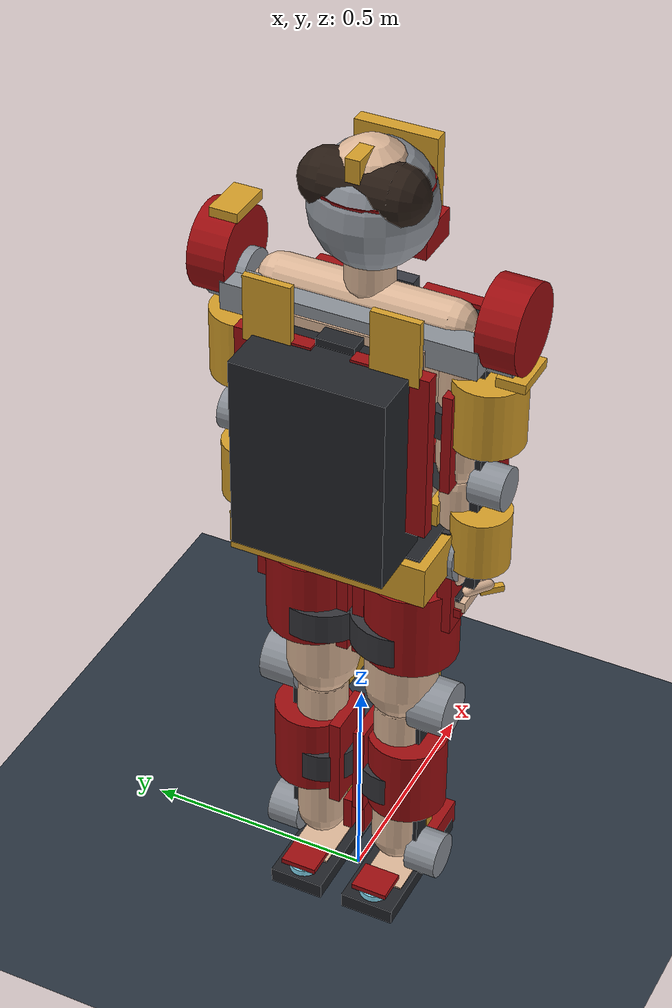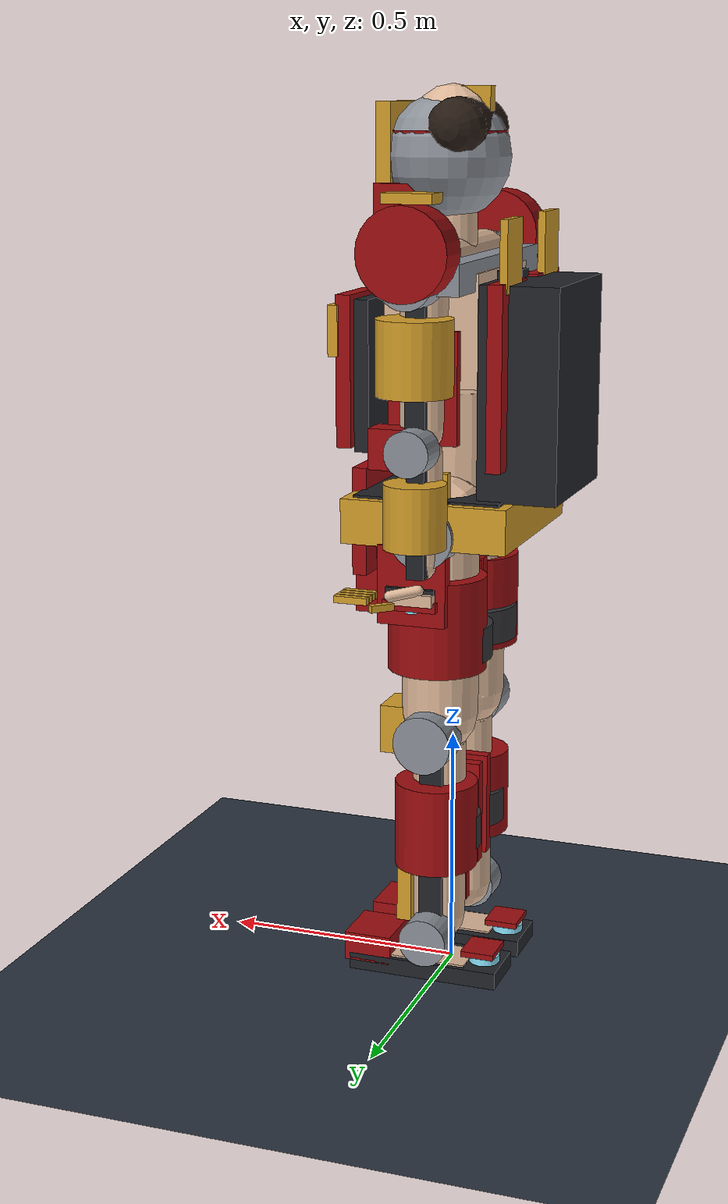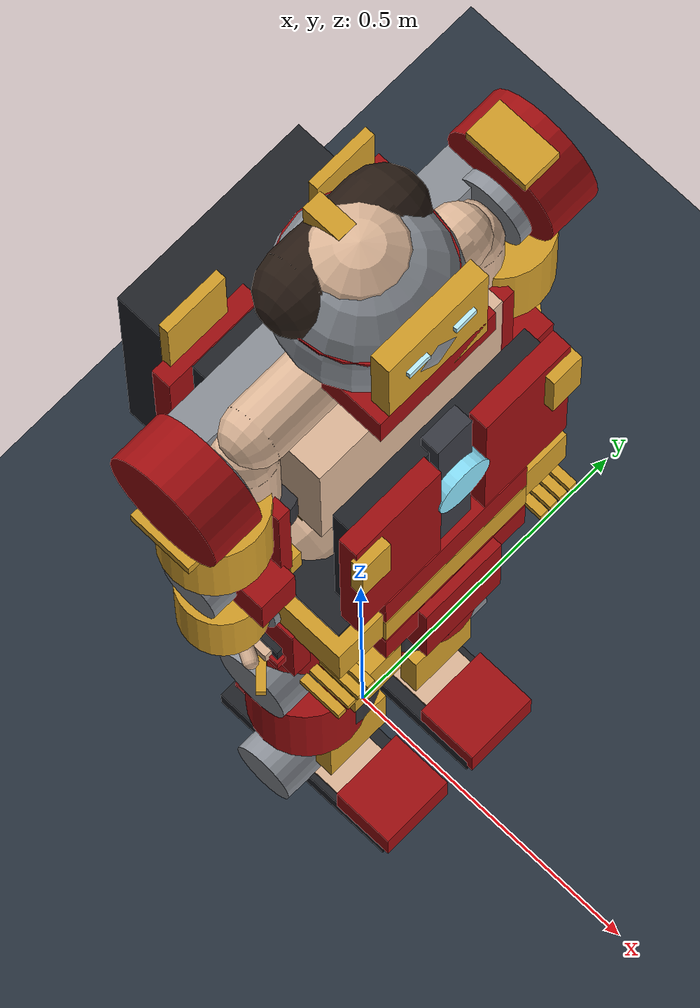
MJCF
<mujoco model="iron_man_mark_suit">
  <compiler angle="radian" />

  <worldbody>
    <light pos="1.5 -2 3" dir="-0.4 0.5 -0.8" diffuse="0.9 0.9 0.9" castshadow="true" /><geom name="floor" type="plane" size="20 20 0.1" material="grid" contype="1" conaffinity="1" /><body name="pelvis_frame" pos="0 0 0.0050"><freejoint name="root" /><geom size="0.15 0.19 0.05" pos="0 0 0.98425" type="box" rgba="0.13 0.14 0.16 1" />
    <geom size="0.17 0.21 0.045" pos="0 0 0.98425" type="box" rgba="0.83 0.62 0.16 1" />
    <body name="spine_frame" pos="0 0 0.96425">
      <inertial pos="-0.075026 0 0.367067" quat="0.698411 0.110554 0.110554 0.698411" mass="19.2" diaginertia="1.03327 0.973365 0.411216" />
      <joint name="trunk_flex" range="-0.35 0.5" actuatorfrcrange="-120 120" damping="0.1" axis="0 1 0" />
      <geom size="0.025 0.04 0.252" pos="-0.11 0 0.252" type="box" rgba="0.13 0.14 0.16 1" />
      <geom size="0.08 0.16 0.21" pos="-0.175 0 0.2772" type="box" rgba="0.13 0.14 0.16 1" />
      <geom size="0.015 0.17 0.15" pos="0.14 0 0.3024" type="box" rgba="0.13 0.14 0.16 1" />
      <geom size="0.03 0.265 0.03" pos="-0.06 0 0.504" type="box" rgba="0.55 0.57 0.6 1" />
      <geom size="0.125" pos="0.02 0 0.72075" rgba="0.55 0.57 0.6 1" />
      <geom size="0.115 0.03" pos="0.02 0 0.74075" type="cylinder" rgba="0.62 0.05 0.06 1" />
      <geom size="0.05 0.1 0.03" pos="0.09 0 0.64075" type="box" rgba="0.62 0.05 0.06 1" />
      <geom size="0.03 0.015 0.025" pos="-0.04 0 0.83075" type="box" rgba="0.83 0.62 0.16 1" />
      <geom size="0.015 0.03 0.17" pos="0.155 0 0.31248" type="box" rgba="0.22 0.23 0.26 1" />
      <geom size="0.045 0.0125" pos="0.175 0 0.33248" quat="0.707107 0 0.707107 0" type="cylinder" rgba="0.55 0.9 1 1" />
      <geom size="0.07 0.01 0.11" pos="0 0.2 0.29248" type="box" rgba="0.62 0.05 0.06 1" />
      <geom size="0.07 0.01 0.11" pos="0 -0.2 0.29248" type="box" rgba="0.62 0.05 0.06 1" />
      <body name="left_shoulder_module" pos="0 0.235 0.504">
        <inertial pos="0 0.04 0" quat="0.5 0.5 -0.5 0.5" mass="1.6" diaginertia="0.00242 0.002063 0.002063" />
        <joint name="left_shoulder_abduction" range="-0.3 2.6" actuatorfrcrange="-60 60" damping="0.1" axis="1 0 0" />
        <geom size="0.055 0.04" pos="0 0.04 0" quat="0.707107 0.707107 0 0" type="cylinder" rgba="0.55 0.57 0.6 1" />
        <body name="left_upper_arm_strut">
          <inertial pos="0 0.0125455 -0.22637" quat="0.997567 0.0697182 0 0" mass="2.75" diaginertia="0.0324653 0.031118 0.00463563" />
          <joint name="left_shoulder_flexion" range="-1 3" actuatorfrcrange="-60 60" damping="0.1" axis="0 1 0" />
          <geom size="0.02 0.0175 0.16275" pos="0 0 -0.16275" type="box" rgba="0.13 0.14 0.16 1" />
          <geom size="0.06 0.03" pos="0 -0.05 -0.179025" type="cylinder" rgba="0.2 0.2 0.22 1" />
          <geom size="0.045 0.035" pos="0 0.035 -0.3255" quat="0.707107 0.707107 0 0" type="cylinder" rgba="0.55 0.57 0.6 1" />
          <geom size="0.075 0.0732375" pos="0 0.02 -0.146475" type="cylinder" rgba="0.83 0.62 0.16 1" />
          <body name="left_forearm_strut" pos="0 0 -0.3255">
            <inertial pos="0 -0.00346154 -0.130207" quat="0.999865 -0.0164367 0 0" mass="1.3" diaginertia="0.00641313 0.00584157 0.00180325" />
            <joint name="left_elbow_flexion" range="-2.4 0.05" actuatorfrcrange="-40 40" damping="0.1" axis="0 1 0" />
            <geom size="0.0175 0.015 0.12775" pos="0 0 -0.12775" type="box" rgba="0.13 0.14 0.16 1" />
            <geom size="0.05 0.03" pos="0 -0.045 -0.140525" type="cylinder" rgba="0.2 0.2 0.22 1" />
            <geom size="0.062 0.063875" pos="0 0.015 -0.12775" type="cylinder" rgba="0.83 0.62 0.16 1" />
            <body name="left_hand" pos="0 0 -0.2555">
              <inertial pos="0.02 -0.045 -0.0511176" quat="0 0.707107 0 0.707107" mass="0.68" diaginertia="0.00085136 0.000692845 0.000425345" />
              <joint name="left_wrist_flexion" range="-0.8 0.8" actuatorfrcrange="-15 15" damping="0.1" axis="1 0 0" />
              <geom size="0.05 0.035 0.015" pos="0.02 -0.045 -0.04" type="box" rgba="0.13 0.14 0.16 1" />
              <geom size="0.055 0.04 0.01" pos="0.02 -0.045 -0.06" type="box" rgba="0.62 0.05 0.06 1" />
              <geom size="0.028 0.006" pos="0.02 -0.045 -0.072" type="cylinder" rgba="0.55 0.9 1 1" />
              <body name="left_finger_1" pos="0.11 -0.072 -0.06">
                <inertial pos="0.035 0 0" quat="0.5 0.5 0.5 0.5" mass="0.03" diaginertia="1.274e-05 1.274e-05 9.8e-07" />
                <joint name="left_finger_1_hinge" range="0 1.3" actuatorfrcrange="-1 1" damping="0.1" axis="0 1 0" />
                <geom size="0.035 0.007 0.007" pos="0.035 0 0" type="box" rgba="0.83 0.62 0.16 1" />
              </body>
              <body name="left_finger_2" pos="0.11 -0.054 -0.06">
                <inertial pos="0.035 0 0" quat="0.5 0.5 0.5 0.5" mass="0.03" diaginertia="1.274e-05 1.274e-05 9.8e-07" />
                <joint name="left_finger_2_hinge" range="0 1.3" actuatorfrcrange="-1 1" damping="0.1" axis="0 1 0" />
                <geom size="0.035 0.007 0.007" pos="0.035 0 0" type="box" rgba="0.83 0.62 0.16 1" />
              </body>
              <body name="left_finger_3" pos="0.11 -0.036 -0.06">
                <inertial pos="0.035 0 0" quat="0.5 0.5 0.5 0.5" mass="0.03" diaginertia="1.274e-05 1.274e-05 9.8e-07" />
                <joint name="left_finger_3_hinge" range="0 1.3" actuatorfrcrange="-1 1" damping="0.1" axis="0 1 0" />
                <geom size="0.035 0.007 0.007" pos="0.035 0 0" type="box" rgba="0.83 0.62 0.16 1" />
              </body>
              <body name="left_finger_4" pos="0.11 -0.018 -0.06">
                <inertial pos="0.035 0 0" quat="0.5 0.5 0.5 0.5" mass="0.03" diaginertia="1.274e-05 1.274e-05 9.8e-07" />
                <joint name="left_finger_4_hinge" range="0 1.3" actuatorfrcrange="-1 1" damping="0.1" axis="0 1 0" />
                <geom size="0.035 0.007 0.007" pos="0.035 0 0" type="box" rgba="0.83 0.62 0.16 1" />
              </body>
              <body name="left_thumb" pos="0.05 0 -0.06" quat="0.921061 0 0 0.389418">
                <inertial pos="0.025 0 0" quat="0.5 0.5 0.5 0.5" mass="0.03" diaginertia="6.74e-06 6.74e-06 9.8e-07" />
                <joint name="left_thumb_hinge" range="-0.9 0" actuatorfrcrange="-1 1" damping="0.1" />
                <geom size="0.025 0.007 0.007" pos="0.025 0 0" type="box" rgba="0.83 0.62 0.16 1" />
              </body>
            </body>
            <body name="left_gauntlet_hatch" pos="0 0.015 -0.09775">
              <inertial pos="0.025 0 0" quat="0 0.707107 0 0.707107" mass="0.06" diaginertia="1.7e-05 1.3e-05 5e-06" />
              <joint name="left_gauntlet_hatch_hinge" range="-1.2 0" actuatorfrcrange="-1.5 1.5" damping="0.1" axis="0 1 0" />
              <geom size="0.025 0.015 0.005" pos="0.025 0 0" type="box" rgba="0.62 0.05 0.06 1" />
            </body>
            <body name="left_gauntlet_inner" pos="0.045 -0.06 -0.12775">
              <inertial pos="-0.04 -0.01 0" quat="0.707107 0 0 0.707107" mass="0.3" diaginertia="0.000696182 0.000503682 0.0002125" />
              <joint name="left_gauntlet_inner_hinge" range="-1.5 0" actuatorfrcrange="-3 3" damping="0.1" />
              <geom size="0.045 0.01 0.0702625" pos="-0.04 -0.01 0" type="box" rgba="0.83 0.62 0.16 1" />
            </body>
          </body>
          <body name="left_elbow_cap" pos="0.05 0 -0.3255">
            <inertial pos="0 0 0" quat="0.707107 0 0 0.707107" mass="0.25" diaginertia="0.000266667 0.000208333 0.000208333" />
            <joint name="left_elbow_cap_hinge" range="-0.5 0" actuatorfrcrange="-2 2" damping="0.1" axis="0 1 0" />
            <geom size="0.04 0.03 0.04" type="box" rgba="0.62 0.05 0.06 1" />
          </body>
          <body name="left_bicep_inner" pos="0.055 -0.075 -0.146475">
            <inertial pos="-0.045 -0.01 0" quat="0.707107 0 0 0.707107" mass="0.35" diaginertia="0.001064 0.000784221 0.000303333" />
            <joint name="left_bicep_inner_hinge" range="-1.5 0" actuatorfrcrange="-3 3" damping="0.1" />
            <geom size="0.05 0.01 0.081375" pos="-0.045 -0.01 0" type="box" rgba="0.83 0.62 0.16 1" />
          </body>
        </body>
        <body name="left_pauldron" pos="0 0.06 0.05" quat="0.707107 0.707107 0 0">
          <inertial pos="0 0.0125 0.0025" quat="0.996788 -0.0800907 0 0" mass="0.8" diaginertia="0.00530533 0.00453864 0.00342836" />
          <joint name="left_pauldron_hinge" range="0 0.7" actuatorfrcrange="-3 3" damping="0.1" axis="1 0 0" />
          <geom size="0.09 0.04" type="cylinder" rgba="0.62 0.05 0.06 1" />
          <geom size="0.05 0.01 0.03" pos="0 0.1 0.02" type="box" rgba="0.83 0.62 0.16 1" />
        </body>
      </body>
      <body name="right_shoulder_module" pos="0 -0.235 0.504">
        <inertial pos="0 -0.04 0" quat="0.5 0.5 -0.5 0.5" mass="1.6" diaginertia="0.00242 0.002063 0.002063" />
        <joint name="right_shoulder_abduction" range="-0.3 2.6" actuatorfrcrange="-60 60" damping="0.1" axis="1 0 0" />
        <geom size="0.055 0.04" pos="0 -0.04 0" quat="0.707107 0.707107 0 0" type="cylinder" rgba="0.55 0.57 0.6 1" />
        <body name="right_upper_arm_strut">
          <inertial pos="0 -0.0125455 -0.22637" quat="0.997567 -0.0697182 0 0" mass="2.75" diaginertia="0.0324653 0.031118 0.00463563" />
          <joint name="right_shoulder_flexion" range="-1 3" actuatorfrcrange="-60 60" damping="0.1" axis="0 1 0" />
          <geom size="0.02 0.0175 0.16275" pos="0 0 -0.16275" type="box" rgba="0.13 0.14 0.16 1" />
          <geom size="0.06 0.03" pos="0 0.05 -0.179025" type="cylinder" rgba="0.2 0.2 0.22 1" />
          <geom size="0.045 0.035" pos="0 -0.035 -0.3255" quat="0.707107 0.707107 0 0" type="cylinder" rgba="0.55 0.57 0.6 1" />
          <geom size="0.075 0.0732375" pos="0 -0.02 -0.146475" type="cylinder" rgba="0.83 0.62 0.16 1" />
          <body name="right_forearm_strut" pos="0 0 -0.3255">
            <inertial pos="0 0.00346154 -0.130207" quat="0.999865 0.0164367 0 0" mass="1.3" diaginertia="0.00641313 0.00584157 0.00180325" />
            <joint name="right_elbow_flexion" range="-2.4 0.05" actuatorfrcrange="-40 40" damping="0.1" axis="0 1 0" />
            <geom size="0.0175 0.015 0.12775" pos="0 0 -0.12775" type="box" rgba="0.13 0.14 0.16 1" />
            <geom size="0.05 0.03" pos="0 0.045 -0.140525" type="cylinder" rgba="0.2 0.2 0.22 1" />
            <geom size="0.062 0.063875" pos="0 -0.015 -0.12775" type="cylinder" rgba="0.83 0.62 0.16 1" />
            <body name="right_hand" pos="0 0 -0.2555">
              <inertial pos="0.02 0.045 -0.0511176" quat="0 0.707107 0 0.707107" mass="0.68" diaginertia="0.00085136 0.000692845 0.000425345" />
              <joint name="right_wrist_flexion" range="-0.8 0.8" actuatorfrcrange="-15 15" damping="0.1" axis="1 0 0" />
              <geom size="0.05 0.035 0.015" pos="0.02 0.045 -0.04" type="box" rgba="0.13 0.14 0.16 1" />
              <geom size="0.055 0.04 0.01" pos="0.02 0.045 -0.06" type="box" rgba="0.62 0.05 0.06 1" />
              <geom size="0.028 0.006" pos="0.02 0.045 -0.072" type="cylinder" rgba="0.55 0.9 1 1" />
              <body name="right_finger_1" pos="0.11 0.018 -0.06">
                <inertial pos="0.035 0 0" quat="0.5 0.5 0.5 0.5" mass="0.03" diaginertia="1.274e-05 1.274e-05 9.8e-07" />
                <joint name="right_finger_1_hinge" range="0 1.3" actuatorfrcrange="-1 1" damping="0.1" axis="0 1 0" />
                <geom size="0.035 0.007 0.007" pos="0.035 0 0" type="box" rgba="0.83 0.62 0.16 1" />
              </body>
              <body name="right_finger_2" pos="0.11 0.036 -0.06">
                <inertial pos="0.035 0 0" quat="0.5 0.5 0.5 0.5" mass="0.03" diaginertia="1.274e-05 1.274e-05 9.8e-07" />
                <joint name="right_finger_2_hinge" range="0 1.3" actuatorfrcrange="-1 1" damping="0.1" axis="0 1 0" />
                <geom size="0.035 0.007 0.007" pos="0.035 0 0" type="box" rgba="0.83 0.62 0.16 1" />
              </body>
              <body name="right_finger_3" pos="0.11 0.054 -0.06">
                <inertial pos="0.035 0 0" quat="0.5 0.5 0.5 0.5" mass="0.03" diaginertia="1.274e-05 1.274e-05 9.8e-07" />
                <joint name="right_finger_3_hinge" range="0 1.3" actuatorfrcrange="-1 1" damping="0.1" axis="0 1 0" />
                <geom size="0.035 0.007 0.007" pos="0.035 0 0" type="box" rgba="0.83 0.62 0.16 1" />
              </body>
              <body name="right_finger_4" pos="0.11 0.072 -0.06">
                <inertial pos="0.035 0 0" quat="0.5 0.5 0.5 0.5" mass="0.03" diaginertia="1.274e-05 1.274e-05 9.8e-07" />
                <joint name="right_finger_4_hinge" range="0 1.3" actuatorfrcrange="-1 1" damping="0.1" axis="0 1 0" />
                <geom size="0.035 0.007 0.007" pos="0.035 0 0" type="box" rgba="0.83 0.62 0.16 1" />
              </body>
              <body name="right_thumb" pos="0.05 0 -0.06" quat="0.921061 0 0 -0.389418">
                <inertial pos="0.025 0 0" quat="0.5 0.5 0.5 0.5" mass="0.03" diaginertia="6.74e-06 6.74e-06 9.8e-07" />
                <joint name="right_thumb_hinge" range="0 0.9" actuatorfrcrange="-1 1" damping="0.1" />
                <geom size="0.025 0.007 0.007" pos="0.025 0 0" type="box" rgba="0.83 0.62 0.16 1" />
              </body>
            </body>
            <body name="right_gauntlet_hatch" pos="0 -0.015 -0.09775">
              <inertial pos="0.025 0 0" quat="0 0.707107 0 0.707107" mass="0.06" diaginertia="1.7e-05 1.3e-05 5e-06" />
              <joint name="right_gauntlet_hatch_hinge" range="-1.2 0" actuatorfrcrange="-1.5 1.5" damping="0.1" axis="0 1 0" />
              <geom size="0.025 0.015 0.005" pos="0.025 0 0" type="box" rgba="0.62 0.05 0.06 1" />
            </body>
            <body name="right_gauntlet_inner" pos="0.045 0.06 -0.12775">
              <inertial pos="-0.04 0.01 0" quat="0.707107 0 0 0.707107" mass="0.3" diaginertia="0.000696182 0.000503682 0.0002125" />
              <joint name="right_gauntlet_inner_hinge" range="0 1.5" actuatorfrcrange="-3 3" damping="0.1" />
              <geom size="0.045 0.01 0.0702625" pos="-0.04 0.01 0" type="box" rgba="0.83 0.62 0.16 1" />
            </body>
          </body>
          <body name="right_elbow_cap" pos="0.05 0 -0.3255">
            <inertial pos="0 0 0" quat="0.707107 0 0 0.707107" mass="0.25" diaginertia="0.000266667 0.000208333 0.000208333" />
            <joint name="right_elbow_cap_hinge" range="-0.5 0" actuatorfrcrange="-2 2" damping="0.1" axis="0 1 0" />
            <geom size="0.04 0.03 0.04" type="box" rgba="0.62 0.05 0.06 1" />
          </body>
          <body name="right_bicep_inner" pos="0.055 0.075 -0.146475">
            <inertial pos="-0.045 0.01 0" quat="0.707107 0 0 0.707107" mass="0.35" diaginertia="0.001064 0.000784221 0.000303333" />
            <joint name="right_bicep_inner_hinge" range="0 1.5" actuatorfrcrange="-3 3" damping="0.1" />
            <geom size="0.05 0.01 0.081375" pos="-0.045 0.01 0" type="box" rgba="0.83 0.62 0.16 1" />
          </body>
        </body>
        <body name="right_pauldron" pos="0 -0.06 0.05" quat="0.707107 0.707107 0 0">
          <inertial pos="0 -0.0125 0.0025" quat="0.996788 0.0800907 0 0" mass="0.8" diaginertia="0.00530533 0.00453864 0.00342836" />
          <joint name="right_pauldron_hinge" range="-0.7 0" actuatorfrcrange="-3 3" damping="0.1" axis="1 0 0" />
          <geom size="0.09 0.04" type="cylinder" rgba="0.62 0.05 0.06 1" />
          <geom size="0.05 0.01 0.03" pos="0 -0.1 0.02" type="box" rgba="0.83 0.62 0.16 1" />
        </body>
      </body>
      <body name="faceplate" pos="0.105 0 0.83075">
        <inertial pos="0.0213559 0 -0.0972881" quat="0.99996 0 0.00899181 0" mass="0.59" diaginertia="0.00310776 0.00177118 0.00144858" />
        <joint name="faceplate_hinge" range="-1.4 0" actuatorfrcrange="-3 3" damping="0.1" axis="0 1 0" />
        <geom size="0.015 0.085 0.095" pos="0.02 0 -0.1" type="box" rgba="0.83 0.62 0.16 1" />
        <geom size="0.003 0.0175 0.006" pos="0.04 0.04 -0.06" type="box" rgba="0.75 0.95 1 1" />
        <geom size="0.003 0.0175 0.006" pos="0.04 -0.04 -0.06" type="box" rgba="0.75 0.95 1 1" />
      </body>
      <body name="left_chest_plate" pos="0.16 0.03 0.31248">
        <inertial pos="0.0124 0.0916 0.0096" quat="0.998616 -0.0432787 0.0110083 -0.0277873" mass="1.25" diaginertia="0.0117257 0.00940247 0.00257813" />
        <joint name="left_chest_plate_hinge" range="0 1.1" actuatorfrcrange="-6 6" damping="0.1" />
        <geom size="0.015 0.075 0.15" pos="0.01 0.085 0" type="box" rgba="0.62 0.05 0.06 1" />
        <geom size="0.01 0.025 0.05" pos="0.03 0.14 0.08" type="box" rgba="0.83 0.62 0.16 1" />
      </body>
      <body name="right_chest_plate" pos="0.16 -0.03 0.31248">
        <inertial pos="0.0124 -0.0916 0.0096" quat="0.998616 0.0432787 0.0110083 0.0277873" mass="1.25" diaginertia="0.0117257 0.00940247 0.00257813" />
        <joint name="right_chest_plate_hinge" range="-1.1 0" actuatorfrcrange="-6 6" damping="0.1" />
        <geom size="0.015 0.075 0.15" pos="0.01 -0.085 0" type="box" rgba="0.62 0.05 0.06 1" />
        <geom size="0.01 0.025 0.05" pos="0.03 -0.14 0.08" type="box" rgba="0.83 0.62 0.16 1" />
      </body>
      <body name="ab_plate_1" pos="0.155 0 0.11248">
        <inertial pos="0.005 0 -0.035" quat="0.707107 0.707107 0 0" mass="0.35" diaginertia="0.002115 0.001998 0.000169167" />
        <joint name="ab_plate_1_hinge" range="0 0.35" actuatorfrcrange="-2 2" damping="0.1" axis="0 1 0" />
        <geom size="0.015 0.13 0.035" pos="0.005 0 -0.035" type="box" rgba="0.62 0.05 0.06 1" />
        <body name="ab_plate_2" pos="0 0 -0.075">
          <inertial pos="0.005 0 -0.035" quat="0.707107 0.707107 0 0" mass="0.35" diaginertia="0.002115 0.001998 0.000169167" />
          <joint name="ab_plate_2_hinge" range="0 0.35" actuatorfrcrange="-2 2" damping="0.1" axis="0 1 0" />
          <geom size="0.015 0.13 0.035" pos="0.005 0 -0.035" type="box" rgba="0.83 0.62 0.16 1" />
          <body name="ab_plate_3" pos="0 0 -0.075">
            <inertial pos="0.005 0 -0.035" quat="0.707107 0.707107 0 0" mass="0.35" diaginertia="0.002115 0.001998 0.000169167" />
            <joint name="ab_plate_3_hinge" range="0 0.35" actuatorfrcrange="-2 2" damping="0.1" axis="0 1 0" />
            <geom size="0.015 0.13 0.035" pos="0.005 0 -0.035" type="box" rgba="0.62 0.05 0.06 1" />
          </body>
        </body>
      </body>
      <body name="left_back_door" pos="-0.13 0.03 0.31248">
        <inertial pos="-0.01 0.09 0" mass="1" diaginertia="0.012933 0.010875 0.002208" />
        <joint name="left_back_door_hinge" range="-1.2 0" actuatorfrcrange="-6 6" damping="0.1" />
        <geom size="0.015 0.08 0.18" pos="-0.01 0.09 0" type="box" rgba="0.62 0.05 0.06 1" />
        <body name="left_air_brake" pos="-0.02 0.1 0.16">
          <inertial pos="0 0 0.07" mass="0.2" diaginertia="0.000493333 0.000330417 0.000170417" />
          <joint name="left_air_brake_hinge" range="-1 0" actuatorfrcrange="-2 2" damping="0.1" axis="0 1 0" />
          <geom size="0.0075 0.05 0.07" pos="0 0 0.07" type="box" rgba="0.83 0.62 0.16 1" />
        </body>
      </body>
      <body name="right_back_door" pos="-0.13 -0.03 0.31248">
        <inertial pos="-0.01 -0.09 0" mass="1" diaginertia="0.012933 0.010875 0.002208" />
        <joint name="right_back_door_hinge" range="0 1.2" actuatorfrcrange="-6 6" damping="0.1" />
        <geom size="0.015 0.08 0.18" pos="-0.01 -0.09 0" type="box" rgba="0.62 0.05 0.06 1" />
        <body name="right_air_brake" pos="-0.02 -0.1 0.16">
          <inertial pos="0 0 0.07" mass="0.2" diaginertia="0.000493333 0.000330417 0.000170417" />
          <joint name="right_air_brake_hinge" range="-1 0" actuatorfrcrange="-2 2" damping="0.1" axis="0 1 0" />
          <geom size="0.0075 0.05 0.07" pos="0 0 0.07" type="box" rgba="0.83 0.62 0.16 1" />
        </body>
      </body>
    </body>
    <body name="left_hip_module" pos="0 0.13 0.96425">
      <inertial pos="0 0.045 0" quat="0.5 0.5 -0.5 0.5" mass="2.4" diaginertia="0.00507 0.004155 0.004155" />
      <joint name="left_hip_abduction" range="-0.3 0.5" actuatorfrcrange="-120 120" damping="0.1" axis="1 0 0" />
      <geom size="0.065 0.045" pos="0 0.045 0" quat="0.707107 0.707107 0 0" type="cylinder" rgba="0.55 0.57 0.6 1" />
      <body name="left_thigh_strut">
        <inertial pos="0 0.0100505 -0.307704" quat="0.996431 0.084413 0 0" mass="4.95" diaginertia="0.100164 0.098458 0.012985" />
        <joint name="left_hip_flexion" range="-0.5 2" actuatorfrcrange="-150 150" damping="0.1" axis="0 1 0" />
        <geom size="0.0275 0.02 0.214375" pos="0 0 -0.214375" type="box" rgba="0.13 0.14 0.16 1" />
        <geom size="0.105 0.035" pos="0 -0.045 -0.235813" type="cylinder" rgba="0.2 0.2 0.22 1" />
        <geom size="0.06 0.04" pos="0 0.04 -0.42875" quat="0.707107 0.707107 0 0" type="cylinder" rgba="0.55 0.57 0.6 1" />
        <geom size="0.1 0.0964685" pos="0 -0.02 -0.192937" type="cylinder" rgba="0.62 0.05 0.06 1" />
        <body name="left_shank_strut" pos="0 0 -0.42875">
          <inertial pos="0 0.00554054 -0.298441" quat="0.997001 0.0773844 0 0" mass="3.7" diaginertia="0.073329 0.0721777 0.00726378" />
          <joint name="left_knee_flexion" range="-2.2 0.05" actuatorfrcrange="-150 150" damping="0.1" axis="0 1 0" />
          <geom size="0.025 0.0175 0.21525" pos="0 0 -0.21525" type="box" rgba="0.13 0.14 0.16 1" />
          <geom size="0.085 0.035" pos="0 -0.045 -0.21525" type="cylinder" rgba="0.2 0.2 0.22 1" />
          <geom size="0.05 0.035" pos="0 0.035 -0.4305" quat="0.707107 0.707107 0 0" type="cylinder" rgba="0.55 0.57 0.6 1" />
          <geom size="0.085 0.090405" pos="0 -0.02 -0.193725" type="cylinder" rgba="0.62 0.05 0.06 1" />
          <body name="left_boot" pos="0 0 -0.4305">
            <inertial pos="0.0333333 -0.045 -0.0797222" quat="0 0.689755 0 0.724042" mass="1.8" diaginertia="0.0203634 0.0188591 0.00253249" />
            <joint name="left_ankle_flexion" range="-0.6 0.6" actuatorfrcrange="-100 100" damping="0.1" axis="0 1 0" />
            <geom size="0.16 0.06 0.0175" pos="0.02 -0.045 -0.0875" type="box" rgba="0.13 0.14 0.16 1" />
            <geom size="0.05 0.06 0.03" pos="0.14 -0.045 -0.055" type="box" rgba="0.62 0.05 0.06 1" />
            <geom size="0.032 0.015" pos="-0.1 -0.045 -0.07" type="cylinder" rgba="0.55 0.9 1 1" />
            <body name="left_boot_shin_guard" pos="0.06 -0.045 0.02">
              <inertial pos="0 0 0.06" mass="0.3" diaginertia="0.0006625 0.0003825 0.000325" />
              <joint name="left_boot_shin_guard_hinge" range="0 0.7" actuatorfrcrange="-2 2" damping="0.1" axis="0 1 0" />
              <geom size="0.015 0.055 0.06" pos="0 0 0.06" type="box" rgba="0.83 0.62 0.16 1" />
            </body>
            <body name="left_thruster_cover" pos="-0.06 -0.045 -0.045">
              <inertial pos="-0.035 0 0" quat="0.5 0.5 -0.5 0.5" mass="0.08" diaginertia="7.53333e-05 4.36267e-05 3.36267e-05" />
              <joint name="left_thruster_cover_hinge" range="-1.3 0" actuatorfrcrange="-1.5 1.5" damping="0.1" axis="0 1 0" />
              <geom size="0.035 0.04 0.006" pos="-0.035 0 0" type="box" rgba="0.62 0.05 0.06 1" />
            </body>
            <body name="left_ankle_flap" pos="0 -0.115 0.02">
              <inertial pos="0 0 0.04" quat="0.707107 0 0 0.707107" mass="0.1" diaginertia="8.33333e-05 5.66667e-05 3.33333e-05" />
              <joint name="left_ankle_flap_hinge" range="0 0.8" actuatorfrcrange="-1.5 1.5" damping="0.1" axis="1 0 0" />
              <geom size="0.03 0.01 0.04" pos="0 0 0.04" type="box" rgba="0.62 0.05 0.06 1" />
            </body>
          </body>
          <body name="left_calf_shell" pos="-0.06 -0.09 -0.193725">
            <inertial pos="0.05 -0.012 0" quat="0.707107 0 0 0.707107" mass="0.45" diaginertia="0.002277 0.001761 0.000563438" />
            <joint name="left_calf_shell_hinge" range="0 1.4" actuatorfrcrange="-3 3" damping="0.1" />
            <geom size="0.06 0.0125 0.107625" pos="0.05 -0.012 0" type="box" rgba="0.62 0.05 0.06 1" />
          </body>
        </body>
        <body name="left_knee_cap" pos="0.07 -0.045 -0.42875">
          <inertial pos="0 0 0" mass="0.35" diaginertia="0.000527917 0.000527917 0.0004725" />
          <joint name="left_knee_cap_hinge" range="-0.6 0" actuatorfrcrange="-2 2" damping="0.1" axis="0 1 0" />
          <geom size="0.045 0.045 0.05" type="box" rgba="0.83 0.62 0.16 1" />
        </body>
        <body name="left_thigh_inner" pos="0.07 -0.1 -0.192937">
          <inertial pos="-0.06 -0.012 0" quat="0.707107 0 0 0.707107" mass="0.5" diaginertia="0.002732 0.001941 0.000842708" />
          <joint name="left_thigh_inner_hinge" range="-1.4 0" actuatorfrcrange="-3 3" damping="0.1" />
          <geom size="0.07 0.0125 0.107188" pos="-0.06 -0.012 0" type="box" rgba="0.62 0.05 0.06 1" />
        </body>
      </body>
    </body>
    <body name="right_hip_module" pos="0 -0.13 0.96425">
      <inertial pos="0 -0.045 0" quat="0.5 0.5 -0.5 0.5" mass="2.4" diaginertia="0.00507 0.004155 0.004155" />
      <joint name="right_hip_abduction" range="-0.3 0.5" actuatorfrcrange="-120 120" damping="0.1" axis="1 0 0" />
      <geom size="0.065 0.045" pos="0 -0.045 0" quat="0.707107 0.707107 0 0" type="cylinder" rgba="0.55 0.57 0.6 1" />
      <body name="right_thigh_strut">
        <inertial pos="0 -0.0100505 -0.307704" quat="0.996431 -0.084413 0 0" mass="4.95" diaginertia="0.100164 0.098458 0.012985" />
        <joint name="right_hip_flexion" range="-0.5 2" actuatorfrcrange="-150 150" damping="0.1" axis="0 1 0" />
        <geom size="0.0275 0.02 0.214375" pos="0 0 -0.214375" type="box" rgba="0.13 0.14 0.16 1" />
        <geom size="0.105 0.035" pos="0 0.045 -0.235813" type="cylinder" rgba="0.2 0.2 0.22 1" />
        <geom size="0.06 0.04" pos="0 -0.04 -0.42875" quat="0.707107 0.707107 0 0" type="cylinder" rgba="0.55 0.57 0.6 1" />
        <geom size="0.1 0.0964685" pos="0 0.02 -0.192937" type="cylinder" rgba="0.62 0.05 0.06 1" />
        <body name="right_shank_strut" pos="0 0 -0.42875">
          <inertial pos="0 -0.00554054 -0.298441" quat="0.997001 -0.0773844 0 0" mass="3.7" diaginertia="0.073329 0.0721777 0.00726378" />
          <joint name="right_knee_flexion" range="-2.2 0.05" actuatorfrcrange="-150 150" damping="0.1" axis="0 1 0" />
          <geom size="0.025 0.0175 0.21525" pos="0 0 -0.21525" type="box" rgba="0.13 0.14 0.16 1" />
          <geom size="0.085 0.035" pos="0 0.045 -0.21525" type="cylinder" rgba="0.2 0.2 0.22 1" />
          <geom size="0.05 0.035" pos="0 -0.035 -0.4305" quat="0.707107 0.707107 0 0" type="cylinder" rgba="0.55 0.57 0.6 1" />
          <geom size="0.085 0.090405" pos="0 0.02 -0.193725" type="cylinder" rgba="0.62 0.05 0.06 1" />
          <body name="right_boot" pos="0 0 -0.4305">
            <inertial pos="0.0333333 0.045 -0.0797222" quat="0 0.689755 0 0.724042" mass="1.8" diaginertia="0.0203634 0.0188591 0.00253249" />
            <joint name="right_ankle_flexion" range="-0.6 0.6" actuatorfrcrange="-100 100" damping="0.1" axis="0 1 0" />
            <geom size="0.16 0.06 0.0175" pos="0.02 0.045 -0.0875" type="box" rgba="0.13 0.14 0.16 1" />
            <geom size="0.05 0.06 0.03" pos="0.14 0.045 -0.055" type="box" rgba="0.62 0.05 0.06 1" />
            <geom size="0.032 0.015" pos="-0.1 0.045 -0.07" type="cylinder" rgba="0.55 0.9 1 1" />
            <body name="right_boot_shin_guard" pos="0.06 0.045 0.02">
              <inertial pos="0 0 0.06" mass="0.3" diaginertia="0.0006625 0.0003825 0.000325" />
              <joint name="right_boot_shin_guard_hinge" range="0 0.7" actuatorfrcrange="-2 2" damping="0.1" axis="0 1 0" />
              <geom size="0.015 0.055 0.06" pos="0 0 0.06" type="box" rgba="0.83 0.62 0.16 1" />
            </body>
            <body name="right_thruster_cover" pos="-0.06 0.045 -0.045">
              <inertial pos="-0.035 0 0" quat="0.5 0.5 -0.5 0.5" mass="0.08" diaginertia="7.53333e-05 4.36267e-05 3.36267e-05" />
              <joint name="right_thruster_cover_hinge" range="-1.3 0" actuatorfrcrange="-1.5 1.5" damping="0.1" axis="0 1 0" />
              <geom size="0.035 0.04 0.006" pos="-0.035 0 0" type="box" rgba="0.62 0.05 0.06 1" />
            </body>
            <body name="right_ankle_flap" pos="0 0.115 0.02">
              <inertial pos="0 0 0.04" quat="0.707107 0 0 0.707107" mass="0.1" diaginertia="8.33333e-05 5.66667e-05 3.33333e-05" />
              <joint name="right_ankle_flap_hinge" range="-0.8 0" actuatorfrcrange="-1.5 1.5" damping="0.1" axis="1 0 0" />
              <geom size="0.03 0.01 0.04" pos="0 0 0.04" type="box" rgba="0.62 0.05 0.06 1" />
            </body>
          </body>
          <body name="right_calf_shell" pos="-0.06 0.09 -0.193725">
            <inertial pos="0.05 0.012 0" quat="0.707107 0 0 0.707107" mass="0.45" diaginertia="0.002277 0.001761 0.000563438" />
            <joint name="right_calf_shell_hinge" range="-1.4 0" actuatorfrcrange="-3 3" damping="0.1" />
            <geom size="0.06 0.0125 0.107625" pos="0.05 0.012 0" type="box" rgba="0.62 0.05 0.06 1" />
          </body>
        </body>
        <body name="right_knee_cap" pos="0.07 0.045 -0.42875">
          <inertial pos="0 0 0" mass="0.35" diaginertia="0.000527917 0.000527917 0.0004725" />
          <joint name="right_knee_cap_hinge" range="-0.6 0" actuatorfrcrange="-2 2" damping="0.1" axis="0 1 0" />
          <geom size="0.045 0.045 0.05" type="box" rgba="0.83 0.62 0.16 1" />
        </body>
        <body name="right_thigh_inner" pos="0.07 0.1 -0.192937">
          <inertial pos="-0.06 0.012 0" quat="0.707107 0 0 0.707107" mass="0.5" diaginertia="0.002732 0.001941 0.000842708" />
          <joint name="right_thigh_inner_hinge" range="0 1.4" actuatorfrcrange="-3 3" damping="0.1" />
          <geom size="0.07 0.0125 0.107188" pos="-0.06 0.012 0" type="box" rgba="0.62 0.05 0.06 1" />
        </body>
      </body>
    </body>
    <body name="codpiece" pos="0.16 0 0.90425">
      <inertial pos="0 0 -0.06" mass="0.4" diaginertia="0.001507 0.000973333 0.000773333" />
      <joint name="codpiece_hinge" range="0 0.6" actuatorfrcrange="-2 2" damping="0.1" axis="0 1 0" />
      <geom size="0.03 0.07 0.08" pos="0 0 -0.06" type="box" rgba="0.62 0.05 0.06 1" />
    </body>
    <body name="left_hip_flap" pos="0.02 0.2 0.94425">
      <inertial pos="0 0 -0.08" quat="0.707107 0 0 0.707107" mass="0.4" diaginertia="0.001507 0.000883333 0.000683333" />
      <joint name="left_hip_flap_hinge" range="-0.6 0" actuatorfrcrange="-2 2" damping="0.1" axis="1 0 0" />
      <geom size="0.07 0.015 0.08" pos="0 0 -0.08" type="box" rgba="0.62 0.05 0.06 1" />
    </body>
    <body name="right_hip_flap" pos="0.02 -0.2 0.94425">
      <inertial pos="0 0 -0.08" quat="0.707107 0 0 0.707107" mass="0.4" diaginertia="0.001507 0.000883333 0.000683333" />
      <joint name="right_hip_flap_hinge" range="0 0.6" actuatorfrcrange="-2 2" damping="0.1" axis="1 0 0" />
      <geom size="0.07 0.015 0.08" pos="0 0 -0.08" type="box" rgba="0.62 0.05 0.06 1" />
    </body>
  <inertial pos="0 0 0.98425" mass="3" diaginertia="0.0386 0.025 0.0586" /></body><body name="w_pelvis" pos="0 0 0.9642"><freejoint name="wearer_root" /><geom type="capsule" fromto="0 -0.090 0.02 0 0.090 0.02" size="0.095" mass="10.650" rgba="0.87 0.72 0.60 1" contype="0" conaffinity="0" /><body name="w_torso" pos="0 0 0.06"><joint name="w_trunk" type="hinge" axis="0 1 0" range="-0.4 0.6" damping="2" /><geom type="capsule" fromto="0 0 0.02 0 0 0.2117" size="0.105" mass="10.650" rgba="0.87 0.72 0.60 1" contype="0" conaffinity="0" /><geom type="box" size="0.095 0.161 0.1109" pos="0 0 0.3427" mass="13.312" rgba="0.87 0.72 0.60 1" contype="0" conaffinity="0" /><geom type="capsule" fromto="0 -0.179 0.4687 0 0.179 0.4687" size="0.045" mass="2.663" rgba="0.87 0.72 0.60 1" contype="0" conaffinity="0" /><body name="w_head" pos="0.01 0 0.4987"><geom type="capsule" fromto="0 0 0 0 0 0.0910" size="0.05" mass="0.911" rgba="0.87 0.72 0.60 1" contype="0" conaffinity="0" /><geom type="capsule" fromto="0 0 0.1310 0 0 0.2210" size="0.085" mass="5.164" rgba="0.87 0.72 0.60 1" contype="0" conaffinity="0" /><geom type="sphere" size="0.012" pos="0.078 0.032 0.2010" rgba="0.16 0.11 0.08 1" contype="0" conaffinity="0" /><geom type="sphere" size="0.012" pos="0.078 -0.032 0.2010" rgba="0.16 0.11 0.08 1" contype="0" conaffinity="0" /><geom type="capsule" fromto="-0.03 -0.07 0.2210 -0.03 0.07 0.2210" size="0.06" mass="0.2" rgba="0.16 0.11 0.08 1" contype="0" conaffinity="0" /></body><body name="w_left_upper_arm" pos="0 0.199 0.4536"><joint name="w_left_shoulder" type="hinge" axis="0 1 0" range="-1.0 3.0" damping="1" /><geom type="capsule" fromto="0 0 -0.02 0 0 -0.2955" size="0.046" mass="2.100" rgba="0.87 0.72 0.60 1" contype="0" conaffinity="0" /><body name="w_left_forearm" pos="0 0 -0.3255"><joint name="w_left_elbow" type="hinge" axis="0 1 0" range="-2.4 0.05" damping="1" /><geom type="capsule" fromto="0 0 -0.02 0 0 -0.2355" size="0.037" mass="1.200" rgba="0.87 0.72 0.60 1" contype="0" conaffinity="0" /><body name="w_left_hand" pos="0 0 -0.2555"><geom type="box" size="0.045 0.038 0.012" pos="0.015 0 -0.05" mass="0.360" rgba="0.87 0.72 0.60 1" contype="0" conaffinity="0" /><geom type="capsule" fromto="0.0 0.030 -0.03 0.05 0.055 -0.04" size="0.011" mass="0.090" rgba="0.87 0.72 0.60 1" contype="0" conaffinity="0" /></body></body></body><body name="w_right_upper_arm" pos="0 -0.199 0.4536"><joint name="w_right_shoulder" type="hinge" axis="0 1 0" range="-1.0 3.0" damping="1" /><geom type="capsule" fromto="0 0 -0.02 0 0 -0.2955" size="0.046" mass="2.100" rgba="0.87 0.72 0.60 1" contype="0" conaffinity="0" /><body name="w_right_forearm" pos="0 0 -0.3255"><joint name="w_right_elbow" type="hinge" axis="0 1 0" range="-2.4 0.05" damping="1" /><geom type="capsule" fromto="0 0 -0.02 0 0 -0.2355" size="0.037" mass="1.200" rgba="0.87 0.72 0.60 1" contype="0" conaffinity="0" /><body name="w_right_hand" pos="0 0 -0.2555"><geom type="box" size="0.045 0.038 0.012" pos="0.015 0 -0.05" mass="0.360" rgba="0.87 0.72 0.60 1" contype="0" conaffinity="0" /><geom type="capsule" fromto="0.0 -0.030 -0.03 0.05 -0.055 -0.04" size="0.011" mass="0.090" rgba="0.87 0.72 0.60 1" contype="0" conaffinity="0" /></body></body></body></body><body name="w_left_thigh" pos="0 0.090 0"><joint name="w_left_hip" type="hinge" axis="0 1 0" range="-0.6 2.0" damping="1.5" /><geom type="capsule" fromto="0 0 -0.02 0 0 -0.3887" size="0.078" mass="7.500" rgba="0.87 0.72 0.60 1" contype="0" conaffinity="0" /><body name="w_left_shank" pos="0 0 -0.4287"><joint name="w_left_knee" type="hinge" axis="0 1 0" range="-2.2 0.05" damping="1.5" /><geom type="capsule" fromto="0 0 -0.02 0 0 -0.4005" size="0.055" mass="3.487" rgba="0.87 0.72 0.60 1" contype="0" conaffinity="0" /><body name="w_left_foot" pos="0 0 -0.4305"><joint name="w_left_ankle" type="hinge" axis="0 1 0" range="-0.6 0.6" damping="1" /><geom type="box" size="0.125 0.045 0.022" pos="0.055 0 -0.0830" mass="1.088" rgba="0.87 0.72 0.60 1" contype="0" conaffinity="0" /></body></body></body><body name="w_right_thigh" pos="0 -0.090 0"><joint name="w_right_hip" type="hinge" axis="0 1 0" range="-0.6 2.0" damping="1.5" /><geom type="capsule" fromto="0 0 -0.02 0 0 -0.3887" size="0.078" mass="7.500" rgba="0.87 0.72 0.60 1" contype="0" conaffinity="0" /><body name="w_right_shank" pos="0 0 -0.4287"><joint name="w_right_knee" type="hinge" axis="0 1 0" range="-2.2 0.05" damping="1.5" /><geom type="capsule" fromto="0 0 -0.02 0 0 -0.4005" size="0.055" mass="3.487" rgba="0.87 0.72 0.60 1" contype="0" conaffinity="0" /><body name="w_right_foot" pos="0 0 -0.4305"><joint name="w_right_ankle" type="hinge" axis="0 1 0" range="-0.6 0.6" damping="1" /><geom type="box" size="0.125 0.045 0.022" pos="0.055 0 -0.0830" mass="1.088" rgba="0.87 0.72 0.60 1" contype="0" conaffinity="0" /></body></body></body></body></worldbody>
<option timestep="0.002" gravity="0 0 -9.81" integrator="implicitfast" /><default><joint damping="0.6" armature="0.01" frictionloss="0.05" /><geom friction="1 0.005 0.0001" condim="3" solref="0.005 1" solimp="0.95 0.99 0.001" contype="1" conaffinity="0" /><position kp="2138.0" forcerange="-855 855" /></default><asset><texture type="skybox" builtin="gradient" rgb1="0.35 0.45 0.6" rgb2="0.05 0.06 0.08" width="256" height="256" /><texture name="grid" type="2d" builtin="checker" rgb1="0.2 0.25 0.3" rgb2="0.12 0.15 0.19" width="512" height="512" /><material name="grid" texture="grid" texrepeat="10 10" reflectance="0.15" /></asset><visual><headlight diffuse="0.7 0.7 0.7" ambient="0.35 0.35 0.35" /><global offwidth="1280" offheight="720" /></visual><actuator><position name="act_trunk_flex" joint="trunk_flex" ctrlrange="-0.35 0.5" ctrllimited="true" /><position name="act_left_shoulder_abduction" joint="left_shoulder_abduction" ctrlrange="-0.3 2.6" ctrllimited="true" /><position name="act_left_shoulder_flexion" joint="left_shoulder_flexion" ctrlrange="-1 3" ctrllimited="true" /><position name="act_left_elbow_flexion" joint="left_elbow_flexion" ctrlrange="-2.4 0.05" ctrllimited="true" /><position name="act_left_wrist_flexion" joint="left_wrist_flexion" ctrlrange="-0.8 0.8" ctrllimited="true" /><position name="act_left_finger_1_hinge" joint="left_finger_1_hinge" ctrlrange="0 1.3" ctrllimited="true" /><position name="act_left_finger_2_hinge" joint="left_finger_2_hinge" ctrlrange="0 1.3" ctrllimited="true" /><position name="act_left_finger_3_hinge" joint="left_finger_3_hinge" ctrlrange="0 1.3" ctrllimited="true" /><position name="act_left_finger_4_hinge" joint="left_finger_4_hinge" ctrlrange="0 1.3" ctrllimited="true" /><position name="act_left_thumb_hinge" joint="left_thumb_hinge" ctrlrange="-0.9 0" ctrllimited="true" /><position name="act_left_gauntlet_hatch_hinge" joint="left_gauntlet_hatch_hinge" ctrlrange="-1.2 0" ctrllimited="true" /><position name="act_left_gauntlet_inner_hinge" joint="left_gauntlet_inner_hinge" ctrlrange="-1.5 0" ctrllimited="true" /><position name="act_left_elbow_cap_hinge" joint="left_elbow_cap_hinge" ctrlrange="-0.5 0" ctrllimited="true" /><position name="act_left_bicep_inner_hinge" joint="left_bicep_inner_hinge" ctrlrange="-1.5 0" ctrllimited="true" /><position name="act_left_pauldron_hinge" joint="left_pauldron_hinge" ctrlrange="0 0.7" ctrllimited="true" /><position name="act_right_shoulder_abduction" joint="right_shoulder_abduction" ctrlrange="-0.3 2.6" ctrllimited="true" /><position name="act_right_shoulder_flexion" joint="right_shoulder_flexion" ctrlrange="-1 3" ctrllimited="true" /><position name="act_right_elbow_flexion" joint="right_elbow_flexion" ctrlrange="-2.4 0.05" ctrllimited="true" /><position name="act_right_wrist_flexion" joint="right_wrist_flexion" ctrlrange="-0.8 0.8" ctrllimited="true" /><position name="act_right_finger_1_hinge" joint="right_finger_1_hinge" ctrlrange="0 1.3" ctrllimited="true" /><position name="act_right_finger_2_hinge" joint="right_finger_2_hinge" ctrlrange="0 1.3" ctrllimited="true" /><position name="act_right_finger_3_hinge" joint="right_finger_3_hinge" ctrlrange="0 1.3" ctrllimited="true" /><position name="act_right_finger_4_hinge" joint="right_finger_4_hinge" ctrlrange="0 1.3" ctrllimited="true" /><position name="act_right_thumb_hinge" joint="right_thumb_hinge" ctrlrange="0 0.9" ctrllimited="true" /><position name="act_right_gauntlet_hatch_hinge" joint="right_gauntlet_hatch_hinge" ctrlrange="-1.2 0" ctrllimited="true" /><position name="act_right_gauntlet_inner_hinge" joint="right_gauntlet_inner_hinge" ctrlrange="0 1.5" ctrllimited="true" /><position name="act_right_elbow_cap_hinge" joint="right_elbow_cap_hinge" ctrlrange="-0.5 0" ctrllimited="true" /><position name="act_right_bicep_inner_hinge" joint="right_bicep_inner_hinge" ctrlrange="0 1.5" ctrllimited="true" /><position name="act_right_pauldron_hinge" joint="right_pauldron_hinge" ctrlrange="-0.7 0" ctrllimited="true" /><position name="act_faceplate_hinge" joint="faceplate_hinge" ctrlrange="-1.4 0" ctrllimited="true" /><position name="act_left_chest_plate_hinge" joint="left_chest_plate_hinge" ctrlrange="0 1.1" ctrllimited="true" /><position name="act_right_chest_plate_hinge" joint="right_chest_plate_hinge" ctrlrange="-1.1 0" ctrllimited="true" /><position name="act_ab_plate_1_hinge" joint="ab_plate_1_hinge" ctrlrange="0 0.35" ctrllimited="true" /><position name="act_ab_plate_2_hinge" joint="ab_plate_2_hinge" ctrlrange="0 0.35" ctrllimited="true" /><position name="act_ab_plate_3_hinge" joint="ab_plate_3_hinge" ctrlrange="0 0.35" ctrllimited="true" /><position name="act_left_back_door_hinge" joint="left_back_door_hinge" ctrlrange="-1.2 0" ctrllimited="true" /><position name="act_left_air_brake_hinge" joint="left_air_brake_hinge" ctrlrange="-1 0" ctrllimited="true" /><position name="act_right_back_door_hinge" joint="right_back_door_hinge" ctrlrange="0 1.2" ctrllimited="true" /><position name="act_right_air_brake_hinge" joint="right_air_brake_hinge" ctrlrange="-1 0" ctrllimited="true" /><position name="act_left_hip_abduction" joint="left_hip_abduction" ctrlrange="-0.3 0.5" ctrllimited="true" /><position name="act_left_hip_flexion" joint="left_hip_flexion" ctrlrange="-0.5 2" ctrllimited="true" /><position name="act_left_knee_flexion" joint="left_knee_flexion" ctrlrange="-2.2 0.05" ctrllimited="true" /><position name="act_left_ankle_flexion" joint="left_ankle_flexion" ctrlrange="-0.6 0.6" ctrllimited="true" /><position name="act_left_boot_shin_guard_hinge" joint="left_boot_shin_guard_hinge" ctrlrange="0 0.7" ctrllimited="true" /><position name="act_left_thruster_cover_hinge" joint="left_thruster_cover_hinge" ctrlrange="-1.3 0" ctrllimited="true" /><position name="act_left_ankle_flap_hinge" joint="left_ankle_flap_hinge" ctrlrange="0 0.8" ctrllimited="true" /><position name="act_left_calf_shell_hinge" joint="left_calf_shell_hinge" ctrlrange="0 1.4" ctrllimited="true" /><position name="act_left_knee_cap_hinge" joint="left_knee_cap_hinge" ctrlrange="-0.6 0" ctrllimited="true" /><position name="act_left_thigh_inner_hinge" joint="left_thigh_inner_hinge" ctrlrange="-1.4 0" ctrllimited="true" /><position name="act_right_hip_abduction" joint="right_hip_abduction" ctrlrange="-0.3 0.5" ctrllimited="true" /><position name="act_right_hip_flexion" joint="right_hip_flexion" ctrlrange="-0.5 2" ctrllimited="true" /><position name="act_right_knee_flexion" joint="right_knee_flexion" ctrlrange="-2.2 0.05" ctrllimited="true" /><position name="act_right_ankle_flexion" joint="right_ankle_flexion" ctrlrange="-0.6 0.6" ctrllimited="true" /><position name="act_right_boot_shin_guard_hinge" joint="right_boot_shin_guard_hinge" ctrlrange="0 0.7" ctrllimited="true" /><position name="act_right_thruster_cover_hinge" joint="right_thruster_cover_hinge" ctrlrange="-1.3 0" ctrllimited="true" /><position name="act_right_ankle_flap_hinge" joint="right_ankle_flap_hinge" ctrlrange="-0.8 0" ctrllimited="true" /><position name="act_right_calf_shell_hinge" joint="right_calf_shell_hinge" ctrlrange="-1.4 0" ctrllimited="true" /><position name="act_right_knee_cap_hinge" joint="right_knee_cap_hinge" ctrlrange="-0.6 0" ctrllimited="true" /><position name="act_right_thigh_inner_hinge" joint="right_thigh_inner_hinge" ctrlrange="0 1.4" ctrllimited="true" /><position name="act_codpiece_hinge" joint="codpiece_hinge" ctrlrange="0 0.6" ctrllimited="true" /><position name="act_left_hip_flap_hinge" joint="left_hip_flap_hinge" ctrlrange="-0.6 0" ctrllimited="true" /><position name="act_right_hip_flap_hinge" joint="right_hip_flap_hinge" ctrlrange="0 0.6" ctrllimited="true" /></actuator><equality><weld body1="pelvis_frame" body2="w_pelvis" solref="0.02 1" solimp="0.9 0.95 0.001" /><weld body1="spine_frame" body2="w_torso" solref="0.02 1" solimp="0.9 0.95 0.001" /><weld body1="left_boot" body2="w_left_foot" solref="0.02 1" solimp="0.9 0.95 0.001" /><weld body1="right_boot" body2="w_right_foot" solref="0.02 1" solimp="0.9 0.95 0.001" /><weld body1="left_hand" body2="w_left_hand" solref="0.02 1" solimp="0.9 0.95 0.001" /><weld body1="right_hand" body2="w_right_hand" solref="0.02 1" solimp="0.9 0.95 0.001" /></equality></mujoco>
